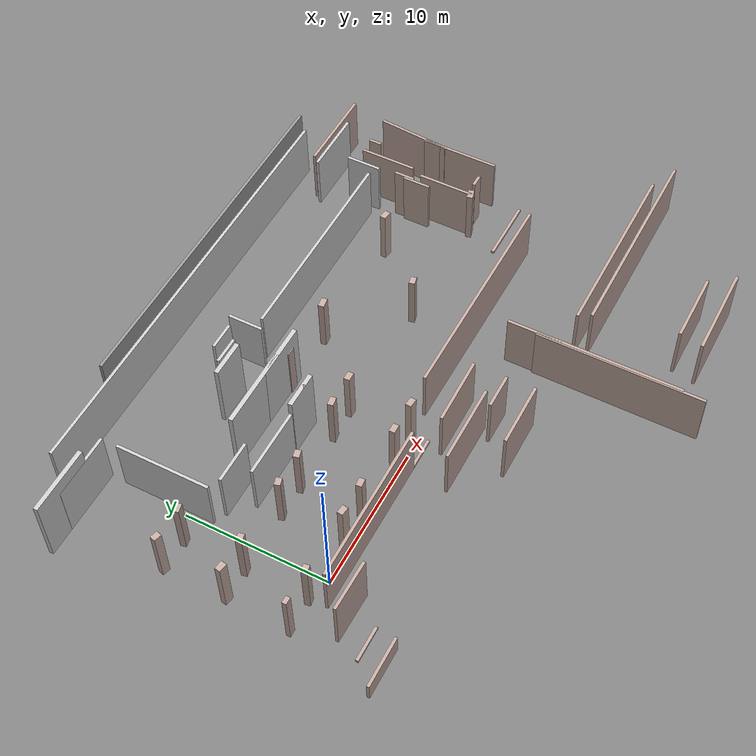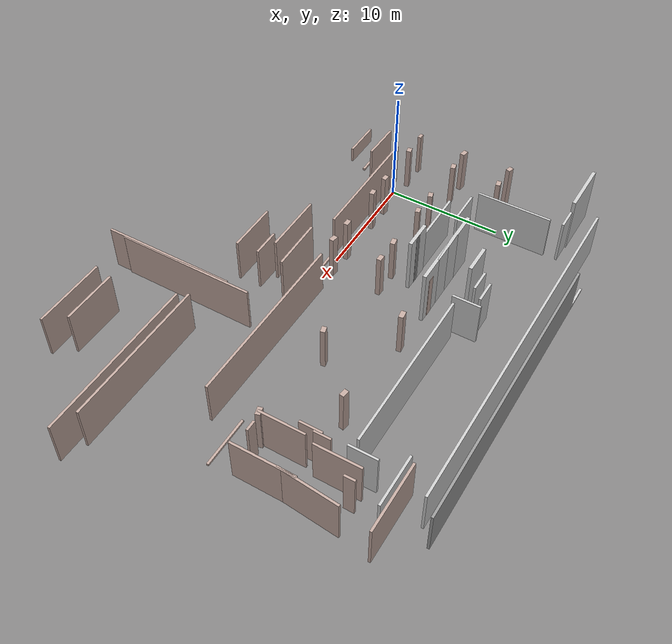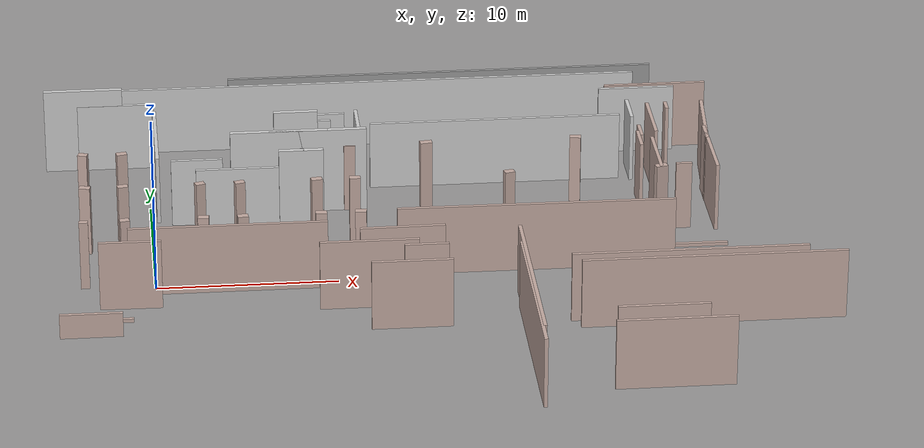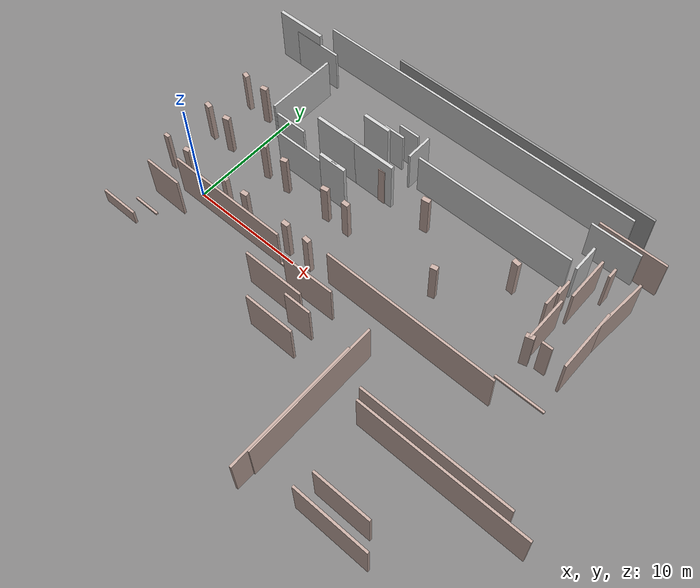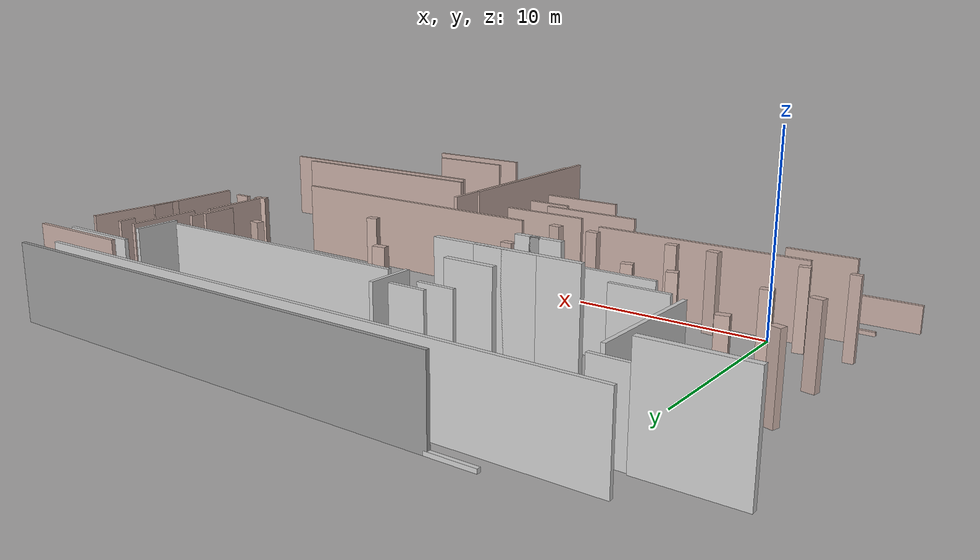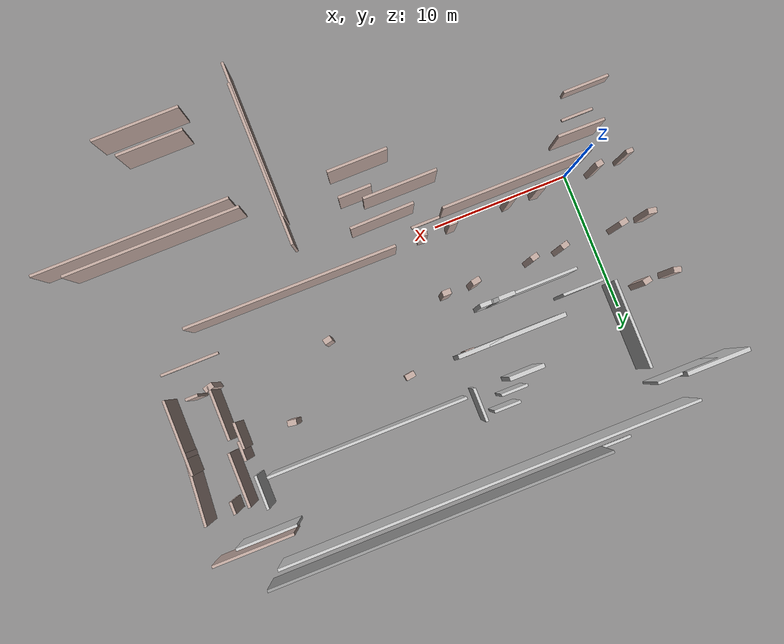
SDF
<sdf version="1.6">
 <model name="gedung_p">
  <pose>0.101024 2.54038 0.0 0.0 -0.0 0.0</pose>
  <link name="Wall_130">
   <collision name="Wall_130_Collision">
    <geometry><box><size>4.5 0.3 5.0</size></box></geometry>
    <pose>0.0 0.0 2.5 0.0 -0.0 0.0</pose>
   </collision>
   <visual name="Wall_130_Visual">
    <pose>0.0 0.0 2.5 0.0 -0.0 0.0</pose>
    <geometry><box><size>4.5 0.3 5.0</size></box></geometry>
    <material><ambient>0.8 0.8 0.8 1</ambient><diffuse>0.8 0.8 0.8 1</diffuse></material>
    <meta><layer>0</layer></meta>
   </visual>
   <pose>-3.74502 13.23962 0.0 0.0 -0.0 3.1416</pose>
  </link>
  <link name="Wall_132">
   <collision name="Wall_132_Collision">
    <geometry><box><size>4.40008 0.2 4.0</size></box></geometry>
    <pose>0.0 0.0 2.0 0.0 -0.0 0.0</pose>
   </collision>
   <visual name="Wall_132_Visual">
    <pose>0.0 0.0 2.0 0.0 -0.0 0.0</pose>
    <geometry><box><size>4.40008 0.2 4.0</size></box></geometry>
    <material><ambient>0.8 0.8 0.8 1</ambient><diffuse>0.8 0.8 0.8 1</diffuse></material>
    <meta><layer>0</layer></meta>
   </visual>
   <pose>-1.887024 13.1816 0.0 0.0 -0.0 -3.1416</pose>
  </link>
  <link name="Wall_137">
   <collision name="Wall_137_Collision">
    <geometry><box><size>6.40062 0.2 4.0</size></box></geometry>
    <pose>0.0 0.0 2.0 0.0 -0.0 0.0</pose>
   </collision>
   <visual name="Wall_137_Visual">
    <pose>0.0 0.0 2.0 0.0 -0.0 0.0</pose>
    <geometry><box><size>6.40062 0.2 4.0</size></box></geometry>
    <material><ambient>0.8 0.8 0.8 1</ambient><diffuse>0.8 0.8 0.8 1</diffuse></material>
    <meta><layer>0</layer></meta>
   </visual>
   <pose>0.304976 8.8896 0.0 0.0 -0.0 -1.570796</pose>
  </link>
  <link name="Wall_138">
   <collision name="Wall_138_Collision">
    <geometry><box><size>2.90014 0.2 4.0</size></box></geometry>
    <pose>0.0 0.0 2.0 0.0 -0.0 0.0</pose>
   </collision>
   <visual name="Wall_138_Visual">
    <pose>0.0 0.0 2.0 0.0 -0.0 0.0</pose>
    <geometry><box><size>2.90014 0.2 4.0</size></box></geometry>
    <material><ambient>0.8 0.8 0.8 1</ambient><diffuse>0.8 0.8 0.8 1</diffuse></material>
    <meta><layer>0</layer></meta>
   </visual>
   <pose>2.49698 5.34762 0.0 0.0 -0.0 -3.1416</pose>
  </link>
  <link name="Wall_139">
   <collision name="Wall_139_Collision">
    <geometry><box><size>4.90086 0.2 4.0</size></box></geometry>
    <pose>0.0 0.0 2.0 0.0 -0.0 0.0</pose>
   </collision>
   <visual name="Wall_139_Visual">
    <pose>0.0 0.0 2.0 0.0 -0.0 0.0</pose>
    <geometry><box><size>4.90086 0.2 4.0</size></box></geometry>
    <material><ambient>0.8 0.8 0.8 1</ambient><diffuse>0.8 0.8 0.8 1</diffuse></material>
    <meta><layer>0</layer></meta>
   </visual>
   <pose>4.84698 3.9976 0.0 0.0 -0.0 0.0</pose>
  </link>
  <link name="Wall_140">
   <collision name="Wall_140_Collision">
    <geometry><box><size>5.5 0.3 5.0</size></box></geometry>
    <pose>0.0 0.0 2.5 0.0 -0.0 0.0</pose>
   </collision>
   <visual name="Wall_140_Visual">
    <pose>0.0 0.0 2.5 0.0 -0.0 0.0</pose>
    <geometry><box><size>5.5 0.3 5.0</size></box></geometry>
    <material><ambient>0.8 0.8 0.8 1</ambient><diffuse>0.8 0.8 0.8 1</diffuse></material>
    <meta><layer>0</layer></meta>
   </visual>
   <pose>7.19698 6.59762 0.0 0.0 -0.0 3.1416</pose>
  </link>
  <link name="Wall_141">
   <collision name="Wall_141_Collision">
    <geometry><box><size>2.5 0.3 5.0</size></box></geometry>
    <pose>0.0 0.0 2.5 0.0 -0.0 0.0</pose>
   </collision>
   <visual name="Wall_141_Visual">
    <pose>0.0 0.0 2.5 0.0 -0.0 0.0</pose>
    <geometry><box><size>2.5 0.3 5.0</size></box></geometry>
    <material><ambient>0.8 0.8 0.8 1</ambient><diffuse>0.8 0.8 0.8 1</diffuse></material>
    <meta><layer>0</layer></meta>
   </visual>
   <pose>8.29698 9.1976 0.0 0.0 -0.0 0.0</pose>
  </link>
  <link name="Wall_142">
   <collision name="Wall_142_Collision">
    <geometry><box><size>5.5 0.3 5.0</size></box></geometry>
    <pose>0.0 0.0 2.5 0.0 -0.0 0.0</pose>
   </collision>
   <visual name="Wall_142_Visual">
    <pose>0.0 0.0 2.5 0.0 -0.0 0.0</pose>
    <geometry><box><size>5.5 0.3 5.0</size></box></geometry>
    <material><ambient>0.8 0.8 0.8 1</ambient><diffuse>0.8 0.8 0.8 1</diffuse></material>
    <meta><layer>0</layer></meta>
   </visual>
   <pose>9.39698 6.59762 0.0 0.0 -0.0 -3.1416</pose>
  </link>
  <link name="Wall_143">
   <collision name="Wall_143_Collision">
    <geometry><box><size>2.5 0.3 5.0</size></box></geometry>
    <pose>0.0 0.0 2.5 0.0 -0.0 0.0</pose>
   </collision>
   <visual name="Wall_143_Visual">
    <pose>0.0 0.0 2.5 0.0 -0.0 0.0</pose>
    <geometry><box><size>2.5 0.3 5.0</size></box></geometry>
    <material><ambient>0.8 0.8 0.8 1</ambient><diffuse>0.8 0.8 0.8 1</diffuse></material>
    <meta><layer>0</layer></meta>
   </visual>
   <pose>8.29698 3.9976 0.0 0.0 -0.0 6.28318</pose>
  </link>
  <link name="Wall_145">
   <collision name="Wall_145_Collision">
    <geometry><box><size>30.5 0.2 4.0</size></box></geometry>
    <pose>0.0 0.0 2.0 0.0 -0.0 0.0</pose>
   </collision>
   <visual name="Wall_145_Visual">
    <pose>0.0 0.0 2.0 0.0 -0.0 0.0</pose>
    <geometry><box><size>30.5 0.2 4.0</size></box></geometry>
    <material><ambient>0.8 0.8 0.8 1</ambient><diffuse>0.8 0.8 0.8 1</diffuse></material>
    <meta><layer>0</layer></meta>
   </visual>
   <pose>13.26298 15.28162 0.0 0.0 -0.0 0.0</pose>
  </link>
  <link name="Wall_147">
   <collision name="Wall_147_Collision">
    <geometry><box><size>2.4 0.2 0.2</size></box></geometry>
    <pose>0.0 0.0 0.1 0.0 -0.0 0.0</pose>
   </collision>
   <visual name="Wall_147_Visual">
    <pose>0.0 0.0 0.1 0.0 -0.0 0.0</pose>
    <geometry><box><size>2.4 0.2 0.2</size></box></geometry>
    <material><ambient>0.8 0.8 0.8 1</ambient><diffuse>0.8 0.8 0.8 1</diffuse></material>
    <meta><layer>0</layer></meta>
   </visual>
   <pose>3.75698 16.3096 0.0 0.0 -0.0 0.0</pose>
  </link>
  <link name="Wall_149">
   <collision name="Wall_149_Collision">
    <geometry><box><size>1.9 0.2 4.0</size></box></geometry>
    <pose>0.0 0.0 2.0 0.0 -0.0 0.0</pose>
   </collision>
   <visual name="Wall_149_Visual">
    <pose>0.0 0.0 2.0 0.0 -0.0 0.0</pose>
    <geometry><box><size>1.9 0.2 4.0</size></box></geometry>
    <material><ambient>0.8 0.8 0.8 1</ambient><diffuse>0.8 0.8 0.8 1</diffuse></material>
    <meta><layer>0</layer></meta>
   </visual>
   <pose>9.39698 10.04762 0.0 0.0 -0.0 3.1416</pose>
  </link>
  <link name="Wall_150">
   <collision name="Wall_150_Collision">
    <geometry><box><size>1.9 0.2 4.0</size></box></geometry>
    <pose>0.0 0.0 2.0 0.0 -0.0 0.0</pose>
   </collision>
   <visual name="Wall_150_Visual">
    <pose>0.0 0.0 2.0 0.0 -0.0 0.0</pose>
    <geometry><box><size>1.9 0.2 4.0</size></box></geometry>
    <material><ambient>0.8 0.8 0.8 1</ambient><diffuse>0.8 0.8 0.8 1</diffuse></material>
    <meta><layer>0</layer></meta>
   </visual>
   <pose>10.24698 10.89762 0.0 0.0 -0.0 0.0</pose>
  </link>
  <link name="Wall_151">
   <collision name="Wall_151_Collision">
    <geometry><box><size>2.4 0.2 4.0</size></box></geometry>
    <pose>0.0 0.0 2.0 0.0 -0.0 0.0</pose>
   </collision>
   <visual name="Wall_151_Visual">
    <pose>0.0 0.0 2.0 0.0 -0.0 0.0</pose>
    <geometry><box><size>2.4 0.2 4.0</size></box></geometry>
    <material><ambient>0.8 0.8 0.8 1</ambient><diffuse>0.8 0.8 0.8 1</diffuse></material>
    <meta><layer>0</layer></meta>
   </visual>
   <pose>11.87498 10.1196 0.0 0.0 -0.0 -1.570796</pose>
  </link>
  <link name="Wall_152">
   <collision name="Wall_152_Collision">
    <geometry><box><size>14.4 0.2 4.0</size></box></geometry>
    <pose>0.0 0.0 2.0 0.0 -0.0 0.0</pose>
   </collision>
   <visual name="Wall_152_Visual">
    <pose>0.0 0.0 2.0 0.0 -0.0 0.0</pose>
    <geometry><box><size>14.4 0.2 4.0</size></box></geometry>
    <material><ambient>0.8 0.8 0.8 1</ambient><diffuse>0.8 0.8 0.8 1</diffuse></material>
    <meta><layer>0</layer></meta>
   </visual>
   <pose>19.75298 9.3416 0.0 0.0 -0.0 0.0</pose>
  </link>
  <link name="Wall_154">
   <collision name="Wall_154_Collision">
    <geometry><box><size>2.40052 0.2 4.0</size></box></geometry>
    <pose>0.0 0.0 2.0 0.0 -0.0 0.0</pose>
   </collision>
   <visual name="Wall_154_Visual">
    <pose>0.0 0.0 2.0 0.0 -0.0 0.0</pose>
    <geometry><box><size>2.40052 0.2 4.0</size></box></geometry>
    <material><ambient>0.8 0.8 0.8 1</ambient><diffuse>0.8 0.8 0.8 1</diffuse></material>
    <meta><layer>0</layer></meta>
   </visual>
   <pose>27.631 10.1196 0.0 0.0 -0.0 1.570796</pose>
  </link>
  <link name="Wall_155">
   <collision name="Wall_155_Collision">
    <geometry><box><size>4.39964 0.2 4.0</size></box></geometry>
    <pose>0.0 0.0 2.0 0.0 -0.0 0.0</pose>
   </collision>
   <visual name="Wall_155_Visual">
    <pose>0.0 0.0 2.0 0.0 -0.0 0.0</pose>
    <geometry><box><size>4.39964 0.2 4.0</size></box></geometry>
    <material><ambient>0.8 0.8 0.8 1</ambient><diffuse>0.8 0.8 0.8 1</diffuse></material>
    <meta><layer>0</layer></meta>
   </visual>
   <pose>28.409 12.9976 0.0 0.0 -0.0 3.1416</pose>
  </link>
  <link name="Wall_157">
   <collision name="Wall_157_Collision">
    <geometry><box><size>24.9 0.2 4.0</size></box></geometry>
    <pose>0.0 0.0 2.0 0.0 -0.0 0.0</pose>
   </collision>
   <visual name="Wall_157_Visual">
    <pose>0.0 0.0 2.0 0.0 -0.0 0.0</pose>
    <geometry><box><size>24.9 0.2 4.0</size></box></geometry>
    <material>
     <ambient>0.8 0.8 0.8 1</ambient>
     <script><uri>file://media/materials/scripts/gazebo.material</uri><name>Gazebo/Grey</name></script>
     <ambient>0.760784 0.662745 0.627451 1</ambient>
    </material>
    <meta><layer>0</layer></meta>
   </visual>
   <pose>17.20698 16.3096 0.0 0.0 -0.0 0.0</pose>
  </link>
  <link name="Wall_159">
   <collision name="Wall_159_Collision">
    <geometry><box><size>5.9 0.2 4.0</size></box></geometry>
    <pose>0.0 0.0 2.0 0.0 -0.0 0.0</pose>
   </collision>
   <visual name="Wall_159_Visual">
    <pose>0.0 0.0 2.0 0.0 -0.0 0.0</pose>
    <geometry><box><size>5.9 0.2 4.0</size></box></geometry>
    <material>
     <script><uri>file://media/materials/scripts/gazebo.material</uri><name>Gazebo/Grey</name></script>
     <ambient>0.760784 0.662745 0.627451 1</ambient>
    </material>
    <meta><layer>0</layer></meta>
   </visual>
   <pose>29.557 13.4596 0.0 0.0 -0.0 -3.1416</pose>
  </link>
  <link name="Wall_161">
   <collision name="Wall_161_Collision">
    <geometry><box><size>0.898622 0.2 4.0</size></box></geometry>
    <pose>0.0 0.0 2.0 0.0 -0.0 0.0</pose>
   </collision>
   <visual name="Wall_161_Visual">
    <pose>0.0 0.0 2.0 0.0 -0.0 0.0</pose>
    <geometry><box><size>0.898622 0.2 4.0</size></box></geometry>
    <material>
     <script><uri>file://media/materials/scripts/gazebo.material</uri><name>Gazebo/Grey</name></script>
     <ambient>0.760784 0.662745 0.627451 1</ambient>
    </material>
    <meta><layer>0</layer></meta>
   </visual>
   <pose>29.804 10.36262 0.0 0.0 -0.0 -1.570796</pose>
  </link>
  <link name="Wall_162">
   <collision name="Wall_162_Collision">
    <geometry><box><size>3.9 0.2 4.0</size></box></geometry>
    <pose>0.0 0.0 2.0 0.0 -0.0 0.0</pose>
   </collision>
   <visual name="Wall_162_Visual">
    <pose>0.0 0.0 2.0 0.0 -0.0 0.0</pose>
    <geometry><box><size>3.9 0.2 4.0</size></box></geometry>
    <material>
     <script><uri>file://media/materials/scripts/gazebo.material</uri><name>Gazebo/Grey</name></script>
     <ambient>0.760784 0.662745 0.627451 1</ambient>
    </material>
    <meta><layer>0</layer></meta>
   </visual>
   <pose>28.743 8.8066 0.0 0.0 -0.0 -4.71162</pose>
  </link>
  <link name="Wall_164">
   <collision name="Wall_164_Collision">
    <geometry><box><size>1.399964 0.2 4.0</size></box></geometry>
    <pose>0.0 0.0 2.0 0.0 -0.0 0.0</pose>
   </collision>
   <visual name="Wall_164_Visual">
    <pose>0.0 0.0 2.0 0.0 -0.0 0.0</pose>
    <geometry><box><size>1.399964 0.2 4.0</size></box></geometry>
    <material>
     <script><uri>file://media/materials/scripts/gazebo.material</uri><name>Gazebo/Grey</name></script>
     <ambient>0.760784 0.662745 0.627451 1</ambient>
    </material>
    <meta><layer>0</layer></meta>
   </visual>
   <pose>27.86 7.07362 0.0 0.0 -0.0 -1.56844</pose>
  </link>
  <link name="Wall_165">
   <collision name="Wall_165_Collision">
    <geometry><box><size>1.900418 0.2 4.0</size></box></geometry>
    <pose>0.0 0.0 2.0 0.0 -0.0 0.0</pose>
   </collision>
   <visual name="Wall_165_Visual">
    <pose>0.0 0.0 2.0 0.0 -0.0 0.0</pose>
    <geometry><box><size>1.900418 0.2 4.0</size></box></geometry>
    <material>
     <script><uri>file://media/materials/scripts/gazebo.material</uri><name>Gazebo/Grey</name></script>
     <ambient>0.760784 0.662745 0.627451 1</ambient>
    </material>
    <meta><layer>0</layer></meta>
   </visual>
   <pose>27.684 6.04862 0.0 0.0 -0.0 -4.71238</pose>
  </link>
  <link name="Wall_166">
   <collision name="Wall_166_Collision">
    <geometry><box><size>3.8993 0.2 4.0</size></box></geometry>
    <pose>0.0 0.0 2.0 0.0 -0.0 0.0</pose>
   </collision>
   <visual name="Wall_166_Visual">
    <pose>0.0 0.0 2.0 0.0 -0.0 0.0</pose>
    <geometry><box><size>3.8993 0.2 4.0</size></box></geometry>
    <material>
     <script><uri>file://media/materials/scripts/gazebo.material</uri><name>Gazebo/Grey</name></script>
     <ambient>0.760784 0.662745 0.627451 1</ambient>
    </material>
    <meta><layer>0</layer></meta>
   </visual>
   <pose>28.391 4.13962 0.0 0.0 -0.0 -1.570796</pose>
  </link>
  <link name="Wall_169">
   <collision name="Wall_169_Collision">
    <geometry><box><size>5.39864 0.2 4.0</size></box></geometry>
    <pose>0.0 0.0 2.0 0.0 -0.0 0.0</pose>
   </collision>
   <visual name="Wall_169_Visual">
    <pose>0.0 0.0 2.0 0.0 -0.0 0.0</pose>
    <geometry><box><size>5.39864 0.2 4.0</size></box></geometry>
    <material>
     <script><uri>file://media/materials/scripts/gazebo.material</uri><name>Gazebo/Grey</name></script>
     <ambient>0.760784 0.662745 0.627451 1</ambient>
    </material>
    <meta><layer>0</layer></meta>
   </visual>
   <pose>31.537 4.6696 0.0 0.0 -0.0 1.570796</pose>
  </link>
  <link name="Wall_173">
   <collision name="Wall_173_Collision">
    <geometry><box><size>5.10546 0.2 4.0</size></box></geometry>
    <pose>0.0 0.0 2.0 0.0 -0.0 0.0</pose>
   </collision>
   <visual name="Wall_173_Visual">
    <pose>0.0 0.0 2.0 0.0 -0.0 0.0</pose>
    <geometry><box><size>5.10546 0.2 4.0</size></box></geometry>
    <material>
     <script><uri>file://media/materials/scripts/gazebo.material</uri><name>Gazebo/Grey</name></script>
     <ambient>0.760784 0.662745 0.627451 1</ambient>
    </material>
    <meta><layer>0</layer></meta>
   </visual>
   <pose>31.713 8.3116 0.0 0.0 -0.0 -1.65269</pose>
  </link>
  <link name="Wall_175">
   <collision name="Wall_175_Collision">
    <geometry><box><size>0.9 0.2 4.0</size></box></geometry>
    <pose>0.0 0.0 2.0 0.0 -0.0 0.0</pose>
   </collision>
   <visual name="Wall_175_Visual">
    <pose>0.0 0.0 2.0 0.0 -0.0 0.0</pose>
    <geometry><box><size>0.9 0.2 4.0</size></box></geometry>
    <material>
     <script><uri>file://media/materials/scripts/gazebo.material</uri><name>Gazebo/Grey</name></script>
     <ambient>0.760784 0.662745 0.627451 1</ambient>
    </material>
    <meta><layer>0</layer></meta>
   </visual>
   <pose>29.699 2.4816 0.0 0.0 -0.0 -3.1416</pose>
  </link>
  <link name="Wall_176">
   <collision name="Wall_176_Collision">
    <geometry><box><size>4.4 0.2 0.2</size></box></geometry>
    <pose>0.0 0.0 0.1 0.0 -0.0 0.0</pose>
   </collision>
   <visual name="Wall_176_Visual">
    <pose>0.0 0.0 0.1 0.0 -0.0 0.0</pose>
    <geometry><box><size>4.4 0.2 0.2</size></box></geometry>
    <material>
     <script><uri>file://media/materials/scripts/gazebo.material</uri><name>Gazebo/Grey</name></script>
     <ambient>0.760784 0.662745 0.627451 1</ambient>
    </material>
    <meta><layer>0</layer></meta>
   </visual>
   <pose>29.699 0.03161 0.0 0.0 -0.0 -3.1416</pose>
  </link>
  <link name="Wall_178">
   <collision name="Wall_178_Collision">
    <geometry><box><size>14.4 0.2 4.0</size></box></geometry>
    <pose>0.0 0.0 2.0 0.0 -0.0 0.0</pose>
   </collision>
   <visual name="Wall_178_Visual">
    <pose>0.0 0.0 2.0 0.0 -0.0 0.0</pose>
    <geometry><box><size>14.4 0.2 4.0</size></box></geometry>
    <material>
     <script><uri>file://media/materials/scripts/gazebo.material</uri><name>Gazebo/Grey</name></script>
     <ambient>0.760784 0.662745 0.627451 1</ambient>
    </material>
    <meta><layer>0</layer></meta>
   </visual>
   <pose>29.699 -9.1684 0.0 0.0 -0.0 -3.1416</pose>
  </link>
  <link name="Wall_180">
   <collision name="Wall_180_Collision">
    <geometry><box><size>6.4 0.2 4.0</size></box></geometry>
    <pose>0.0 0.0 2.0 0.0 -0.0 0.0</pose>
   </collision>
   <visual name="Wall_180_Visual">
    <pose>0.0 0.0 2.0 0.0 -0.0 0.0</pose>
    <geometry><box><size>6.4 0.2 4.0</size></box></geometry>
    <material>
     <script><uri>file://media/materials/scripts/gazebo.material</uri><name>Gazebo/Grey</name></script>
     <ambient>0.760784 0.662745 0.627451 1</ambient>
    </material>
    <meta><layer>0</layer></meta>
   </visual>
   <pose>26.599 -16.2684 0.0 0.0 -0.0 6.28318</pose>
  </link>
  <link name="Wall_181">
   <collision name="Wall_181_Collision">
    <geometry><box><size>11.4 0.2 4.0</size></box></geometry>
    <pose>0.0 0.0 2.0 0.0 -0.0 0.0</pose>
   </collision>
   <visual name="Wall_181_Visual">
    <pose>0.0 0.0 2.0 0.0 -0.0 0.0</pose>
    <geometry><box><size>11.4 0.2 4.0</size></box></geometry>
    <material>
     <script><uri>file://media/materials/scripts/gazebo.material</uri><name>Gazebo/Grey</name></script>
     <ambient>0.760784 0.662745 0.627451 1</ambient>
    </material>
    <meta><layer>0</layer></meta>
   </visual>
   <pose>19.53898 -12.30838 0.0 0.0 -0.0 4.71238</pose>
  </link>
  <link name="Wall_182">
   <collision name="Wall_182_Collision">
    <geometry><box><size>4.4 0.2 4.0</size></box></geometry>
    <pose>0.0 0.0 2.0 0.0 -0.0 0.0</pose>
   </collision>
   <visual name="Wall_182_Visual">
    <pose>0.0 0.0 2.0 0.0 -0.0 0.0</pose>
    <geometry><box><size>4.4 0.2 4.0</size></box></geometry>
    <material>
     <script><uri>file://media/materials/scripts/gazebo.material</uri><name>Gazebo/Grey</name></script>
     <ambient>0.760784 0.662745 0.627451 1</ambient>
    </material>
    <meta><layer>0</layer></meta>
   </visual>
   <pose>13.47898 -8.3484 0.0 0.0 -0.0 6.28318</pose>
  </link>
  <link name="Wall_189">
   <collision name="Wall_189_Collision">
    <geometry><box><size>5.4 0.2 4.0</size></box></geometry>
    <pose>0.0 0.0 2.0 0.0 -0.0 0.0</pose>
   </collision>
   <visual name="Wall_189_Visual">
    <pose>0.0 0.0 2.0 0.0 -0.0 0.0</pose>
    <geometry><box><size>5.4 0.2 4.0</size></box></geometry>
    <material>
     <script><uri>file://media/materials/scripts/gazebo.material</uri><name>Gazebo/Grey</name></script>
     <ambient>0.760784 0.662745 0.627451 1</ambient>
    </material>
    <meta><layer>0</layer></meta>
   </visual>
   <pose>11.37898 -5.74838 0.0 0.0 -0.0 3.1416</pose>
  </link>
  <link name="Wall_190">
   <collision name="Wall_190_Collision">
    <geometry><box><size>2.378 0.2 0.2</size></box></geometry>
    <pose>0.0 0.0 0.1 0.0 -0.0 0.0</pose>
   </collision>
   <visual name="Wall_190_Visual">
    <pose>0.0 0.0 0.1 0.0 -0.0 0.0</pose>
    <geometry><box><size>2.378 0.2 0.2</size></box></geometry>
    <material>
     <script><uri>file://media/materials/scripts/gazebo.material</uri><name>Gazebo/Grey</name></script>
     <ambient>0.760784 0.662745 0.627451 1</ambient>
    </material>
    <meta><layer>0</layer></meta>
   </visual>
   <pose>10.28998 -3.1484 0.0 0.0 -0.0 6.28318</pose>
  </link>
  <link name="Wall_191">
   <collision name="Wall_191_Collision">
    <geometry><box><size>10.8997 0.2 4.0</size></box></geometry>
    <pose>0.0 0.0 2.0 0.0 -0.0 0.0</pose>
   </collision>
   <visual name="Wall_191_Visual">
    <pose>0.0 0.0 2.0 0.0 -0.0 0.0</pose>
    <geometry><box><size>10.8997 0.2 4.0</size></box></geometry>
    <material>
     <script><uri>file://media/materials/scripts/gazebo.material</uri><name>Gazebo/Grey</name></script>
     <ambient>0.760784 0.662745 0.627451 1</ambient>
    </material>
    <meta><layer>0</layer></meta>
   </visual>
   <pose>3.85098 -3.1484 0.0 0.0 -0.0 6.28318</pose>
  </link>
  <link name="Wall_192">
   <collision name="Wall_192_Collision">
    <geometry><box><size>3.40008 0.2 4.0</size></box></geometry>
    <pose>0.0 0.0 2.0 0.0 -0.0 0.0</pose>
   </collision>
   <visual name="Wall_192_Visual">
    <pose>0.0 0.0 2.0 0.0 -0.0 0.0</pose>
    <geometry><box><size>3.40008 0.2 4.0</size></box></geometry>
    <material>
     <script><uri>file://media/materials/scripts/gazebo.material</uri><name>Gazebo/Grey</name></script>
     <ambient>0.760784 0.662745 0.627451 1</ambient>
    </material>
    <meta><layer>0</layer></meta>
   </visual>
   <pose>-1.510024 -4.74838 0.0 0.0 -0.0 -3.15534</pose>
  </link>
  <link name="Wall_194">
   <collision name="Wall_194_Collision">
    <geometry><box><size>2.4 0.2 0.2</size></box></geometry>
    <pose>0.0 0.0 0.1 0.0 -0.0 0.0</pose>
   </collision>
   <visual name="Wall_194_Visual">
    <pose>0.0 0.0 0.1 0.0 -0.0 0.0</pose>
    <geometry><box><size>2.4 0.2 0.2</size></box></geometry>
    <material>
     <script><uri>file://media/materials/scripts/gazebo.material</uri><name>Gazebo/Grey</name></script>
     <ambient>0.760784 0.662745 0.627451 1</ambient>
    </material>
    <meta><layer>0</layer></meta>
   </visual>
   <pose>-2.62102 -6.3484 0.0 0.0 -0.0 6.28318</pose>
  </link>
  <link name="Wall_195">
   <collision name="Wall_195_Collision">
    <geometry><box><size>3.4 0.2 1.4</size></box></geometry>
    <pose>0.0 0.0 0.7 0.0 -0.0 0.0</pose>
   </collision>
   <visual name="Wall_195_Visual">
    <pose>0.0 0.0 0.7 0.0 -0.0 0.0</pose>
    <geometry><box><size>3.4 0.2 1.4</size></box></geometry>
    <material>
     <script><uri>file://media/materials/scripts/gazebo.material</uri><name>Gazebo/Grey</name></script>
     <ambient>0.760784 0.662745 0.627451 1</ambient>
    </material>
    <meta><layer>0</layer></meta>
   </visual>
   <pose>-3.72102 -7.94838 0.0 0.0 -0.0 -3.1416</pose>
  </link>
  <link name="Wall_205">
   <collision name="Wall_205_Collision">
    <geometry><box><size>15.4006 0.2 4.0</size></box></geometry>
    <pose>0.0 0.0 2.0 0.0 -0.0 0.0</pose>
   </collision>
   <visual name="Wall_205_Visual">
    <pose>0.0 0.0 2.0 0.0 -0.0 0.0</pose>
    <geometry><box><size>15.4006 0.2 4.0</size></box></geometry>
    <material>
     <script><uri>file://media/materials/scripts/gazebo.material</uri><name>Gazebo/Grey</name></script>
     <ambient>0.760784 0.662745 0.627451 1</ambient>
    </material>
    <meta><layer>0</layer></meta>
   </visual>
   <pose>20.891 -1.99039 0.0 0.0 -0.0 -0.00579</pose>
  </link>
  <link name="Wall_206">
   <collision name="Wall_206_Collision">
    <geometry><box><size>12.87816 0.2 4.0</size></box></geometry>
    <pose>0.0 0.0 2.0 0.0 -0.0 0.0</pose>
   </collision>
   <visual name="Wall_206_Visual">
    <pose>0.0 0.0 2.0 0.0 -0.0 0.0</pose>
    <geometry><box><size>12.87816 0.2 4.0</size></box></geometry>
    <material>
     <script><uri>file://media/materials/scripts/gazebo.material</uri><name>Gazebo/Grey</name></script>
     <ambient>0.760784 0.662745 0.627451 1</ambient>
    </material>
    <meta><layer>0</layer></meta>
   </visual>
   <pose>28.491 -8.3514 0.0 0.0 -0.0 -3.1416</pose>
  </link>
  <link name="Wall_209">
   <collision name="Wall_209_Collision">
    <geometry><box><size>4.89946 0.2 4.0</size></box></geometry>
    <pose>0.0 0.0 2.0 0.0 -0.0 0.0</pose>
   </collision>
   <visual name="Wall_209_Visual">
    <pose>0.0 0.0 2.0 0.0 -0.0 0.0</pose>
    <geometry><box><size>4.89946 0.2 4.0</size></box></geometry>
    <material>
     <script><uri>file://media/materials/scripts/gazebo.material</uri><name>Gazebo/Grey</name></script>
     <ambient>0.760784 0.662745 0.627451 1</ambient>
    </material>
    <meta><layer>0</layer></meta>
   </visual>
   <pose>26.141 -14.6904 0.0 0.0 -0.0 6.28318</pose>
  </link>
  <link name="Wall_210">
   <collision name="Wall_210_Collision">
    <geometry><box><size>11.8995 0.2 4.0</size></box></geometry>
    <pose>0.0 0.0 2.0 0.0 -0.0 0.0</pose>
   </collision>
   <visual name="Wall_210_Visual">
    <pose>0.0 0.0 2.0 0.0 -0.0 0.0</pose>
    <geometry><box><size>11.8995 0.2 4.0</size></box></geometry>
    <material>
     <script><uri>file://media/materials/scripts/gazebo.material</uri><name>Gazebo/Grey</name></script>
     <ambient>0.760784 0.662745 0.627451 1</ambient>
    </material>
    <meta><layer>0</layer></meta>
   </visual>
   <pose>19.65498 -10.55438 0.0 0.0 -0.0 4.71238</pose>
  </link>
  <link name="Wall_211">
   <collision name="Wall_211_Collision">
    <geometry><box><size>2.4 0.2 4.0</size></box></geometry>
    <pose>0.0 0.0 2.0 0.0 -0.0 0.0</pose>
   </collision>
   <visual name="Wall_211_Visual">
    <pose>0.0 0.0 2.0 0.0 -0.0 0.0</pose>
    <geometry><box><size>2.4 0.2 4.0</size></box></geometry>
    <material>
     <script><uri>file://media/materials/scripts/gazebo.material</uri><name>Gazebo/Grey</name></script>
     <ambient>0.760784 0.662745 0.627451 1</ambient>
    </material>
    <meta><layer>0</layer></meta>
   </visual>
   <pose>14.41898 -6.41838 0.0 0.0 -0.0 6.28318</pose>
  </link>
  <link name="Wall_214">
   <collision name="Wall_214_Collision">
    <geometry><box><size>4.64908 0.2 4.0</size></box></geometry>
    <pose>0.0 0.0 2.0 0.0 -0.0 0.0</pose>
   </collision>
   <visual name="Wall_214_Visual">
    <pose>0.0 0.0 2.0 0.0 -0.0 0.0</pose>
    <geometry><box><size>4.64908 0.2 4.0</size></box></geometry>
    <material>
     <script><uri>file://media/materials/scripts/gazebo.material</uri><name>Gazebo/Grey</name></script>
     <ambient>0.760784 0.662745 0.627451 1</ambient>
    </material>
    <meta><layer>0</layer></meta>
   </visual>
   <pose>13.30498 -4.19338 0.0 0.0 -0.0 -3.129</pose>
  </link>
  <link name="Wall_233">
   <collision name="Wall_233_Collision">
    <geometry><box><size>0.520792 0.4 4.0</size></box></geometry>
    <pose>0.0 0.0 2.0 0.0 -0.0 0.0</pose>
   </collision>
   <visual name="Wall_233_Visual">
    <pose>0.0 0.0 2.0 0.0 -0.0 0.0</pose>
    <geometry><box><size>0.520792 0.4 4.0</size></box></geometry>
    <material>
     <script><uri>file://media/materials/scripts/gazebo.material</uri><name>Gazebo/Grey</name></script>
     <ambient>0.760784 0.662745 0.627451 1</ambient>
    </material>
    <meta><layer>0</layer></meta>
   </visual>
   <pose>-1.720908 -2.02304 0.0 0.0 -0.0 0.18132</pose>
  </link>
  <link name="Wall_235">
   <collision name="Wall_235_Collision">
    <geometry><box><size>0.59715 0.4 4.0</size></box></geometry>
    <pose>0.0 0.0 2.0 0.0 -0.0 0.0</pose>
   </collision>
   <visual name="Wall_235_Visual">
    <pose>0.0 0.0 2.0 0.0 -0.0 0.0</pose>
    <geometry><box><size>0.59715 0.4 4.0</size></box></geometry>
    <material>
     <script><uri>file://media/materials/scripts/gazebo.material</uri><name>Gazebo/Grey</name></script>
     <ambient>0.760784 0.662745 0.627451 1</ambient>
    </material>
    <meta><layer>0</layer></meta>
   </visual>
   <pose>2.58238 -2.0449 0.0 0.0 -0.0 -0.110998</pose>
  </link>
  <link name="Wall_237">
   <collision name="Wall_237_Collision">
    <geometry><box><size>0.585912 0.4 4.0</size></box></geometry>
    <pose>0.0 0.0 2.0 0.0 -0.0 0.0</pose>
   </collision>
   <visual name="Wall_237_Visual">
    <pose>0.0 0.0 2.0 0.0 -0.0 0.0</pose>
    <geometry><box><size>0.585912 0.4 4.0</size></box></geometry>
    <material>
     <script><uri>file://media/materials/scripts/gazebo.material</uri><name>Gazebo/Grey</name></script>
     <ambient>0.760784 0.662745 0.627451 1</ambient>
    </material>
    <meta><layer>0</layer></meta>
   </visual>
   <pose>4.7313 -2.05584 0.0 0.0 -0.0 -6.16568</pose>
  </link>
  <link name="Wall_239">
   <collision name="Wall_239_Collision">
    <geometry><box><size>0.61981 0.4 4.0</size></box></geometry>
    <pose>0.0 0.0 2.0 0.0 -0.0 0.0</pose>
   </collision>
   <visual name="Wall_239_Visual">
    <pose>0.0 0.0 2.0 0.0 -0.0 0.0</pose>
    <geometry><box><size>0.61981 0.4 4.0</size></box></geometry>
    <material>
     <script><uri>file://media/materials/scripts/gazebo.material</uri><name>Gazebo/Grey</name></script>
     <ambient>0.760784 0.662745 0.627451 1</ambient>
    </material>
    <meta><layer>0</layer></meta>
   </visual>
   <pose>9.02366 -2.01756 0.0 0.0 -0.0 0.0</pose>
  </link>
  <link name="Wall_242">
   <collision name="Wall_242_Collision">
    <geometry><box><size>0.3 0.3 5.0</size></box></geometry>
    <pose>0.0 0.0 2.5 0.0 -0.0 0.0</pose>
   </collision>
   <visual name="Wall_242_Visual">
    <pose>0.0 0.0 2.5 0.0 -0.0 0.0</pose>
    <geometry><box><size>0.3 0.3 5.0</size></box></geometry>
    <material>
     <script><uri>file://media/materials/scripts/gazebo.material</uri><name>Gazebo/Grey</name></script>
     <ambient>1 1 1 1</ambient>
    </material>
    <meta><layer>0</layer></meta>
   </visual>
   <pose>8.57528 4.01908 0.0 0.0 -0.0 0.0</pose>
  </link>
  <link name="Wall_244">
   <collision name="Wall_244_Collision">
    <geometry><box><size>0.5 0.3 5.0</size></box></geometry>
    <pose>0.0 0.0 2.5 0.0 -0.0 0.0</pose>
   </collision>
   <visual name="Wall_244_Visual">
    <pose>0.0 0.0 2.5 0.0 -0.0 0.0</pose>
    <geometry><box><size>0.5 0.3 5.0</size></box></geometry>
    <material>
     <script><uri>file://media/materials/scripts/gazebo.material</uri><name>Gazebo/Grey</name></script>
     <ambient>1 1 1 1</ambient>
    </material>
    <meta><layer>0</layer></meta>
   </visual>
   <pose>8.46436 4.01908 0.0 0.0 -0.0 6.28318</pose>
  </link>
  <link name="Wall_246">
   <collision name="Wall_246_Collision">
    <geometry><box><size>0.618992 0.4 4.0</size></box></geometry>
    <pose>0.0 0.0 2.0 0.0 -0.0 0.0</pose>
   </collision>
   <visual name="Wall_246_Visual">
    <pose>0.0 0.0 2.0 0.0 -0.0 0.0</pose>
    <geometry><box><size>0.618992 0.4 4.0</size></box></geometry>
    <material>
     <script><uri>file://media/materials/scripts/gazebo.material</uri><name>Gazebo/Grey</name></script>
     <ambient>0.760784 0.662745 0.627451 1</ambient>
    </material>
    <meta><layer>0</layer></meta>
   </visual>
   <pose>11.19992 -2.03398 0.0 0.0 -0.0 -0.099916</pose>
  </link>
  <link name="Wall_248">
   <collision name="Wall_248_Collision">
    <geometry><box><size>0.689444 0.4 4.0</size></box></geometry>
    <pose>0.0 0.0 2.0 0.0 -0.0 0.0</pose>
   </collision>
   <visual name="Wall_248_Visual">
    <pose>0.0 0.0 2.0 0.0 -0.0 0.0</pose>
    <geometry><box><size>0.689444 0.4 4.0</size></box></geometry>
    <material>
     <script><uri>file://media/materials/scripts/gazebo.material</uri><name>Gazebo/Grey</name></script>
     <ambient>0.760784 0.662745 0.627451 1</ambient>
    </material>
    <meta><layer>0</layer></meta>
   </visual>
   <pose>28.394 2.29036 0.0 0.0 -0.0 0.265104</pose>
  </link>
  <link name="Wall_250">
   <collision name="Wall_250_Collision">
    <geometry><box><size>0.573202 0.4 4.0</size></box></geometry>
    <pose>0.0 0.0 2.0 0.0 -0.0 0.0</pose>
   </collision>
   <visual name="Wall_250_Visual">
    <pose>0.0 0.0 2.0 0.0 -0.0 0.0</pose>
    <geometry><box><size>0.573202 0.4 4.0</size></box></geometry>
    <material>
     <script><uri>file://media/materials/scripts/gazebo.material</uri><name>Gazebo/Grey</name></script>
     <ambient>0.760784 0.662745 0.627451 1</ambient>
    </material>
    <meta><layer>0</layer></meta>
   </visual>
   <pose>19.82506 2.2808 0.0 0.0 -0.0 0.221314</pose>
  </link>
  <link name="Wall_252">
   <collision name="Wall_252_Collision">
    <geometry><box><size>0.610398 0.4 4.0</size></box></geometry>
    <pose>0.0 0.0 2.0 0.0 -0.0 0.0</pose>
   </collision>
   <visual name="Wall_252_Visual">
    <pose>0.0 0.0 2.0 0.0 -0.0 0.0</pose>
    <geometry><box><size>0.610398 0.4 4.0</size></box></geometry>
    <material>
     <script><uri>file://media/materials/scripts/gazebo.material</uri><name>Gazebo/Grey</name></script>
     <ambient>0.760784 0.662745 0.627451 1</ambient>
    </material>
    <meta><layer>0</layer></meta>
   </visual>
   <pose>11.17964 2.27124 0.0 0.0 -0.0 0.0</pose>
  </link>
  <link name="Wall_254">
   <collision name="Wall_254_Collision">
    <geometry><box><size>0.649386 0.4 4.0</size></box></geometry>
    <pose>0.0 0.0 2.0 0.0 -0.0 0.0</pose>
   </collision>
   <visual name="Wall_254_Visual">
    <pose>0.0 0.0 2.0 0.0 -0.0 0.0</pose>
    <geometry><box><size>0.649386 0.4 4.0</size></box></geometry>
    <material>
     <script><uri>file://media/materials/scripts/gazebo.material</uri><name>Gazebo/Grey</name></script>
     <ambient>0.760784 0.662745 0.627451 1</ambient>
    </material>
    <meta><layer>0</layer></meta>
   </visual>
   <pose>11.17964 6.57482 0.0 0.0 -0.0 0.0</pose>
  </link>
  <link name="Wall_256">
   <collision name="Wall_256_Collision">
    <geometry><box><size>0.687542 0.4 4.0</size></box></geometry>
    <pose>0.0 0.0 2.0 0.0 -0.0 0.0</pose>
   </collision>
   <visual name="Wall_256_Visual">
    <pose>0.0 0.0 2.0 0.0 -0.0 0.0</pose>
    <geometry><box><size>0.687542 0.4 4.0</size></box></geometry>
    <material>
     <script><uri>file://media/materials/scripts/gazebo.material</uri><name>Gazebo/Grey</name></script>
     <ambient>0.760784 0.662745 0.627451 1</ambient>
    </material>
    <meta><layer>0</layer></meta>
   </visual>
   <pose>15.5406 6.56526 0.0 0.0 -0.0 0.133136</pose>
  </link>
  <link name="Wall_258">
   <collision name="Wall_258_Collision">
    <geometry><box><size>0.63032 0.4 4.0</size></box></geometry>
    <pose>0.0 0.0 2.0 0.0 -0.0 0.0</pose>
   </collision>
   <visual name="Wall_258_Visual">
    <pose>0.0 0.0 2.0 0.0 -0.0 0.0</pose>
    <geometry><box><size>0.63032 0.4 4.0</size></box></geometry>
    <material>
     <script><uri>file://media/materials/scripts/gazebo.material</uri><name>Gazebo/Grey</name></script>
     <ambient>0.760784 0.662745 0.627451 1</ambient>
    </material>
    <meta><layer>0</layer></meta>
   </visual>
   <pose>24.0618 6.54612 0.0 0.0 -0.0 -0.166282</pose>
  </link>
  <link name="Wall_260">
   <collision name="Wall_260_Collision">
    <geometry><box><size>0.63032 0.4 4.0</size></box></geometry>
    <pose>0.0 0.0 2.0 0.0 -0.0 0.0</pose>
   </collision>
   <visual name="Wall_260_Visual">
    <pose>0.0 0.0 2.0 0.0 -0.0 0.0</pose>
    <geometry><box><size>0.63032 0.4 4.0</size></box></geometry>
    <material>
     <script><uri>file://media/materials/scripts/gazebo.material</uri><name>Gazebo/Grey</name></script>
     <ambient>0.760784 0.662745 0.627451 1</ambient>
    </material>
    <meta><layer>0</layer></meta>
   </visual>
   <pose>9.04698 2.2808 0.0 0.0 -0.0 0.166282</pose>
  </link>
  <link name="Wall_262">
   <collision name="Wall_262_Collision">
    <geometry><box><size>0.535248 0.4 4.0</size></box></geometry>
    <pose>0.0 0.0 2.0 0.0 -0.0 0.0</pose>
   </collision>
   <visual name="Wall_262_Visual">
    <pose>0.0 0.0 2.0 0.0 -0.0 0.0</pose>
    <geometry><box><size>0.535248 0.4 4.0</size></box></geometry>
    <material>
     <script><uri>file://media/materials/scripts/gazebo.material</uri><name>Gazebo/Grey</name></script>
     <ambient>0.760784 0.662745 0.627451 1</ambient>
    </material>
    <meta><layer>0</layer></meta>
   </visual>
   <pose>2.55334 2.26166 0.0 0.0 -0.0 0.283794</pose>
  </link>
  <link name="Wall_264">
   <collision name="Wall_264_Collision">
    <geometry><box><size>0.554208 0.4 4.0</size></box></geometry>
    <pose>0.0 0.0 2.0 0.0 -0.0 0.0</pose>
   </collision>
   <visual name="Wall_264_Visual">
    <pose>0.0 0.0 2.0 0.0 -0.0 0.0</pose>
    <geometry><box><size>0.554208 0.4 4.0</size></box></geometry>
    <material>
     <script><uri>file://media/materials/scripts/gazebo.material</uri><name>Gazebo/Grey</name></script>
     <ambient>0.760784 0.662745 0.627451 1</ambient>
    </material>
    <meta><layer>0</layer></meta>
   </visual>
   <pose>4.76252 2.24254 0.0 0.0 -0.0 0.24871</pose>
  </link>
  <link name="Wall_281">
   <collision name="Wall_281_Collision">
    <geometry><box><size>0.535248 0.4 4.0</size></box></geometry>
    <pose>0.0 0.0 2.0 0.0 -0.0 0.0</pose>
   </collision>
   <visual name="Wall_281_Visual">
    <pose>0.0 0.0 2.0 0.0 -0.0 0.0</pose>
    <geometry><box><size>0.535248 0.4 4.0</size></box></geometry>
    <material>
     <script><uri>file://media/materials/scripts/gazebo.material</uri><name>Gazebo/Grey</name></script>
     <ambient>0.760784 0.662745 0.627451 1</ambient>
    </material>
    <meta><layer>0</layer></meta>
   </visual>
   <pose>-3.85422 6.6035 0.0 0.0 -0.0 -0.283794</pose>
  </link>
  <link name="Wall_283">
   <collision name="Wall_283_Collision">
    <geometry><box><size>0.611266 0.4 4.0</size></box></geometry>
    <pose>0.0 0.0 2.0 0.0 -0.0 0.0</pose>
   </collision>
   <visual name="Wall_283_Visual">
    <pose>0.0 0.0 2.0 0.0 -0.0 0.0</pose>
    <geometry><box><size>0.611266 0.4 4.0</size></box></geometry>
    <material>
     <script><uri>file://media/materials/scripts/gazebo.material</uri><name>Gazebo/Grey</name></script>
     <ambient>0.760784 0.662745 0.627451 1</ambient>
    </material>
    <meta><layer>0</layer></meta>
   </visual>
   <pose>-3.81596 2.2808 0.0 0.0 -0.0 -0.18132</pose>
  </link>
  <link name="Wall_287">
   <collision name="Wall_287_Collision">
    <geometry><box><size>0.5 0.3 4.0</size></box></geometry>
    <pose>0.0 0.0 2.0 0.0 -0.0 0.0</pose>
   </collision>
   <visual name="Wall_287_Visual">
    <pose>0.0 0.0 2.0 0.0 -0.0 0.0</pose>
    <geometry><box><size>0.5 0.3 4.0</size></box></geometry>
    <material>
     <script><uri>file://media/materials/scripts/gazebo.material</uri><name>Gazebo/Grey</name></script>
     <ambient>0.760784 0.662745 0.627451 1</ambient>
    </material>
    <meta><layer>0</layer></meta>
   </visual>
   <pose>-3.95502 -2.0704 0.0 0.0 -0.0 0.0</pose>
  </link>
  <link name="Wall_289">
   <collision name="Wall_289_Collision">
    <geometry><box><size>0.592224 0.4 4.0</size></box></geometry>
    <pose>0.0 0.0 2.0 0.0 -0.0 0.0</pose>
   </collision>
   <visual name="Wall_289_Visual">
    <pose>0.0 0.0 2.0 0.0 -0.0 0.0</pose>
    <geometry><box><size>0.592224 0.4 4.0</size></box></geometry>
    <material>
     <script><uri>file://media/materials/scripts/gazebo.material</uri><name>Gazebo/Grey</name></script>
     <ambient>0.760784 0.662745 0.627451 1</ambient>
    </material>
    <meta><layer>0</layer></meta>
   </visual>
   <pose>-1.683294 6.54612 0.0 0.0 -0.0 0.199338</pose>
  </link>
  <link name="Wall_291">
   <collision name="Wall_291_Collision">
    <geometry><box><size>0.592224 0.4 4.0</size></box></geometry>
    <pose>0.0 0.0 2.0 0.0 -0.0 0.0</pose>
   </collision>
   <visual name="Wall_291_Visual">
    <pose>0.0 0.0 2.0 0.0 -0.0 0.0</pose>
    <geometry><box><size>0.592224 0.4 4.0</size></box></geometry>
    <material>
     <script><uri>file://media/materials/scripts/gazebo.material</uri><name>Gazebo/Grey</name></script>
     <ambient>0.760784 0.662745 0.627451 1</ambient>
    </material>
    <meta><layer>0</layer></meta>
   </visual>
   <pose>-1.721548 2.2808 0.0 0.0 -0.0 0.199338</pose>
  </link>
  <static>1</static>
 </model>
</sdf>
